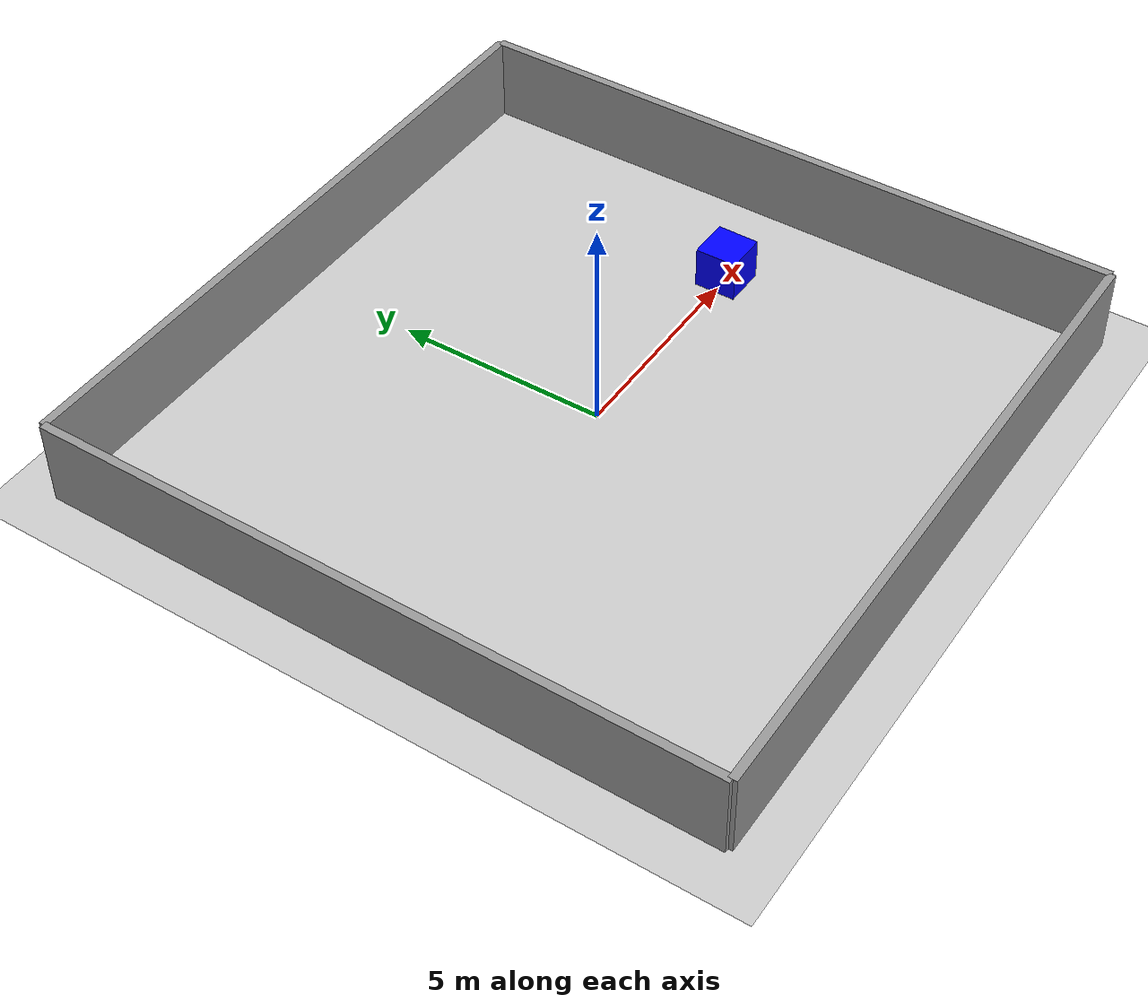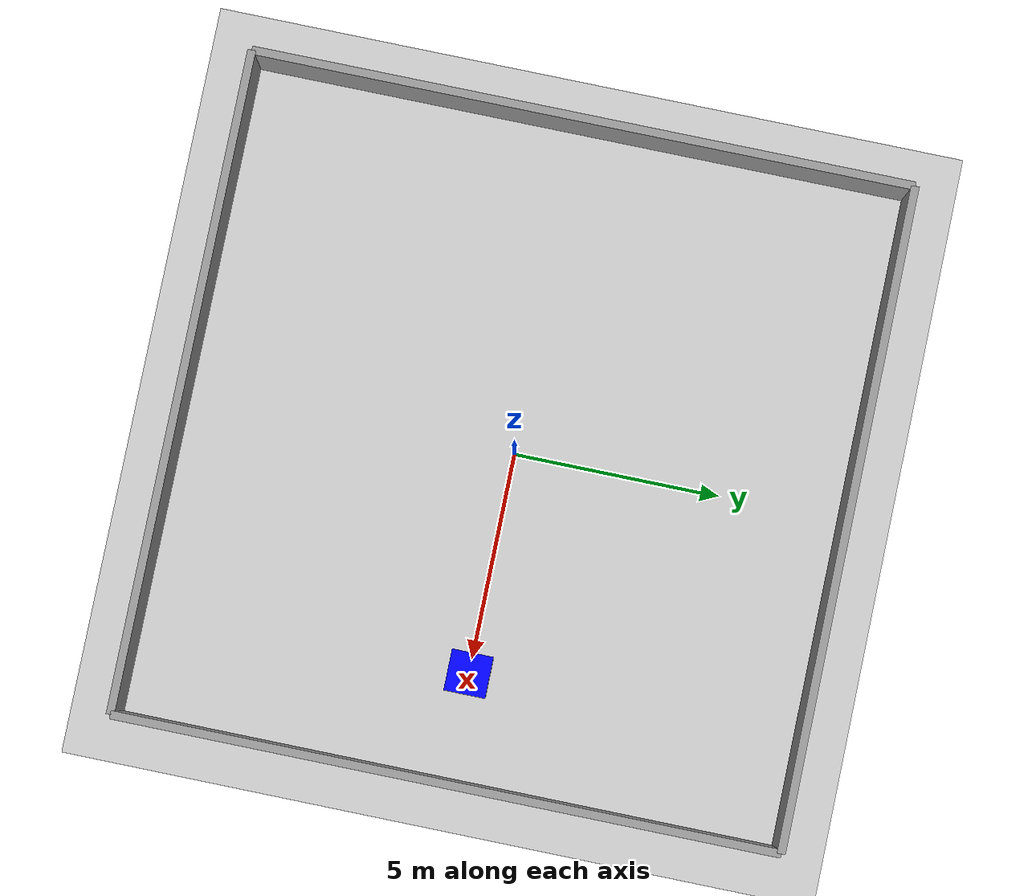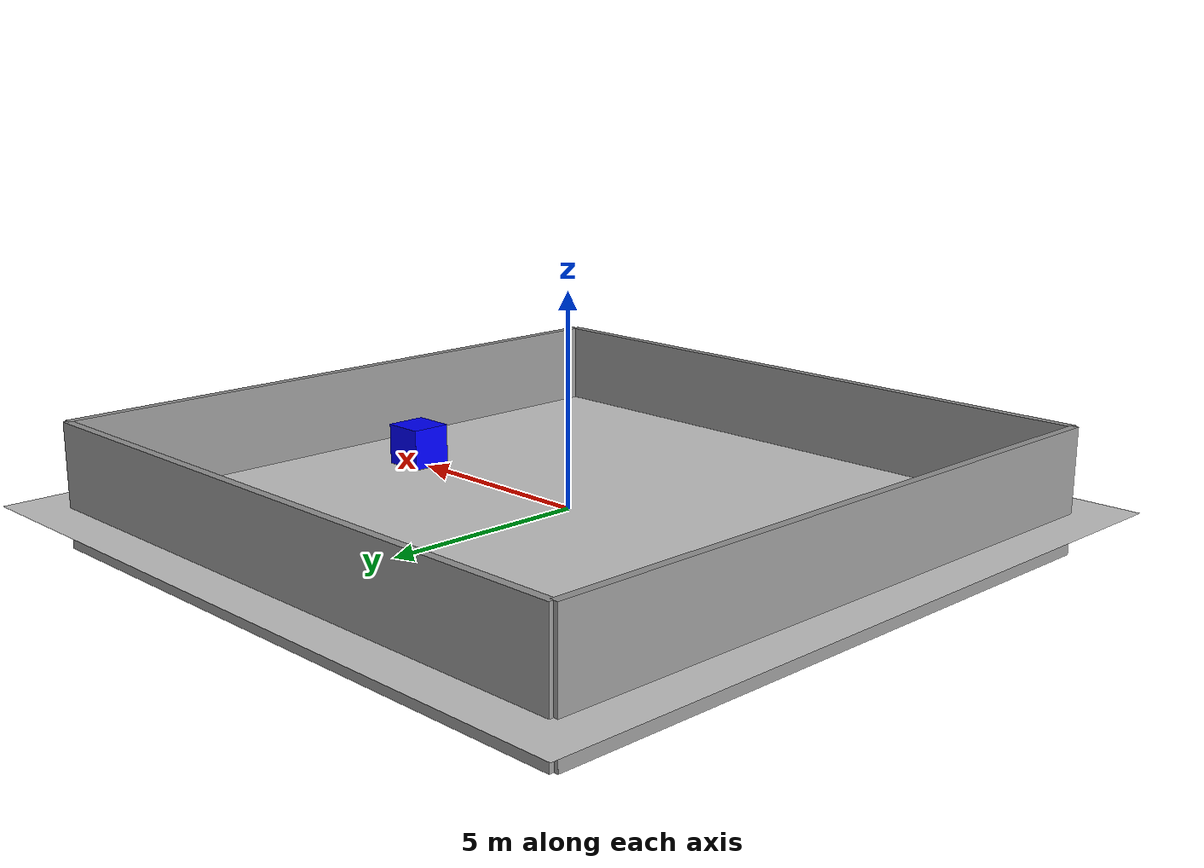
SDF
<sdf version="1.7">
 <world name="planar_moving_box_world">
  <plugin name="gazebo_ros_api_plugin" filename="libgazebo_ros_api_plugin.so">
   <ros><namespace>/</namespace></ros>
  </plugin>
  <model name="ground_plane">
   <static>1</static>
   <link name="link">
    <collision name="collision">
     <geometry><plane><normal>0 0 1</normal><size>100 100</size></plane></geometry>
     <surface><friction><ode><mu>100</mu><mu2>50</mu2></ode></friction></surface>
    </collision>
    <visual name="visual">
     <cast_shadows>0</cast_shadows>
     <geometry><plane><normal>0 0 1</normal><size>100 100</size></plane></geometry>
     <material>
      <script><uri>file://media/materials/scripts/gazebo.material</uri><name>Gazebo/Grey</name></script>
     </material>
    </visual>
   </link>
  </model>
  <light name="sun" type="directional">
   <pose>0 0 10 0 -0 0</pose>
   <diffuse>0.8 0.8 0.8 1</diffuse>
   <specular>0.2 0.2 0.2 1</specular>
   <attenuation>
    <range>1000</range>
    <constant>0.9</constant>
    <linear>0.01</linear>
    <quadratic>0.001</quadratic>
   </attenuation>
   <direction>-0.5 0.1 -0.9</direction>
   <spot><inner_angle>0</inner_angle><outer_angle>0</outer_angle><falloff>0</falloff></spot>
  </light>
  <model name="moving_box">
   <pose>5.36798 -0 -0 0 -0 0</pose>
   <static>0</static>
   <link name="box_link">
    <pose>0 0 0.5 0 -0 0</pose>
    <inertial>
     <mass>1</mass>
     <inertia><ixx>1</ixx><ixy>0</ixy><ixz>0</ixz><iyy>1</iyy><iyz>0</iyz><izz>1</izz></inertia>
    </inertial>
    <collision name="collision"><geometry><box><size>1 1 1</size></box></geometry></collision>
    <visual name="visual">
     <geometry><box><size>1 1 1</size></box></geometry>
     <material><ambient>0 0 1 1</ambient></material>
    </visual>
   </link>
   <plugin name="planar_movement_plugin" filename="libgazebo_ros_planar_move.so">
    <bodyName>box_link</bodyName>
    <max_velocity>1.0</max_velocity>
    <min_velocity>-1.0</min_velocity>
    <commandTopic>/cmd_vel</commandTopic>
    <odometryTopic>/odom</odometryTopic>
    <odometryFrame>odom</odometryFrame>
    <robotBaseFrame>base_footprint</robotBaseFrame>
    <odometryRate>20</odometryRate>
    <cmdTimeout>1.0</cmdTimeout>
   </plugin>
  </model>
  <gravity>0 0 -9.8</gravity>
  <magnetic_field>6e-06 2.3e-05 -4.2e-05</magnetic_field>
  <atmosphere type="adiabatic"/>
  <physics type="ode">
   <max_step_size>0.001</max_step_size>
   <real_time_factor>1</real_time_factor>
   <real_time_update_rate>1000</real_time_update_rate>
  </physics>
  <scene><ambient>0.4 0.4 0.4 1</ambient><background>0.7 0.7 0.7 1</background><shadows>1</shadows></scene>
  <spherical_coordinates>
   <surface_model>EARTH_WGS84</surface_model>
   <latitude_deg>0</latitude_deg>
   <longitude_deg>0</longitude_deg>
   <elevation>0</elevation>
   <heading_deg>0</heading_deg>
  </spherical_coordinates>
  <model name="wall_north">
   <static>1</static>
   <link name="link">
    <pose>0 8 0.5 0 0 0</pose>
    <collision name="collision"><geometry><box><size>16 0.2 1</size></box></geometry></collision>
    <visual name="visual">
     <geometry><box><size>16 0.2 3</size></box></geometry>
     <material><ambient>0.6 0.6 0.6 1</ambient></material>
    </visual>
   </link>
  </model>
  <model name="wall_south">
   <static>1</static>
   <link name="link">
    <pose>0 -8 0.5 0 0 0</pose>
    <collision name="collision"><geometry><box><size>16 0.2 1</size></box></geometry></collision>
    <visual name="visual">
     <geometry><box><size>16 0.2 3</size></box></geometry>
     <material><ambient>0.6 0.6 0.6 1</ambient></material>
    </visual>
   </link>
  </model>
  <model name="wall_east">
   <static>1</static>
   <link name="link">
    <pose>8 0 0.5 0 0 0</pose>
    <collision name="collision"><geometry><box><size>0.2 16 1</size></box></geometry></collision>
    <visual name="visual">
     <geometry><box><size>0.2 16 3</size></box></geometry>
     <material><ambient>0.6 0.6 0.6 1</ambient></material>
    </visual>
   </link>
  </model>
  <model name="wall_west">
   <static>1</static>
   <link name="link">
    <pose>-8 0 0.5 0 0 0</pose>
    <collision name="collision"><geometry><box><size>0.2 16 1</size></box></geometry></collision>
    <visual name="visual">
     <geometry><box><size>0.2 16 3</size></box></geometry>
     <material><ambient>0.6 0.6 0.6 1</ambient></material>
    </visual>
   </link>
  </model>
 </world>
</sdf>
